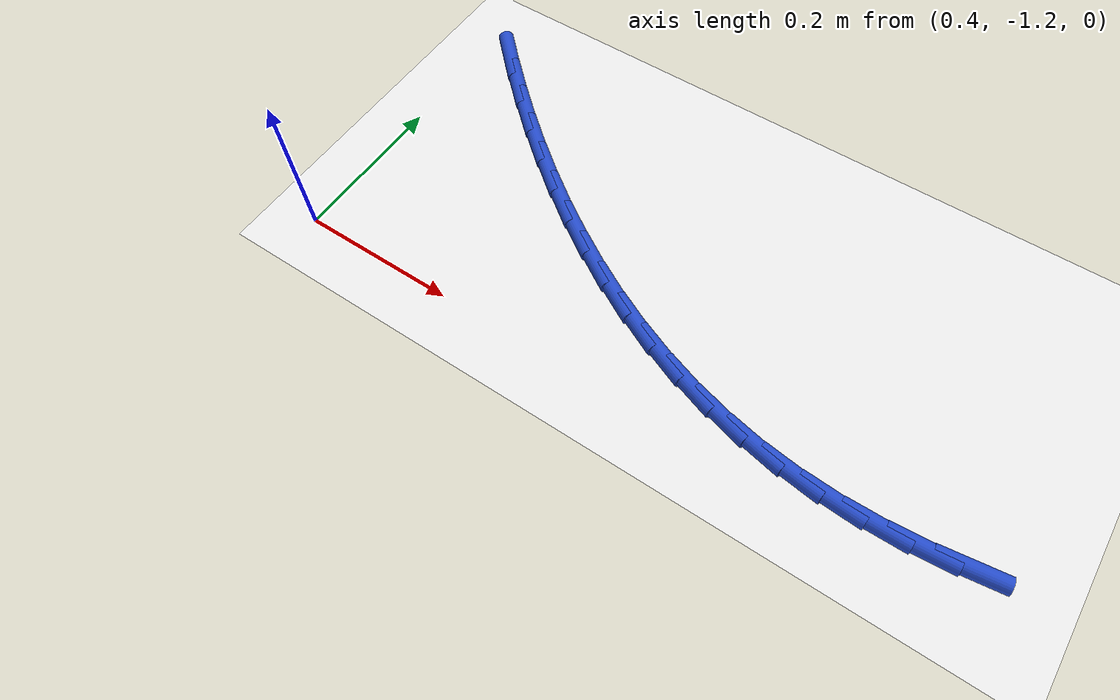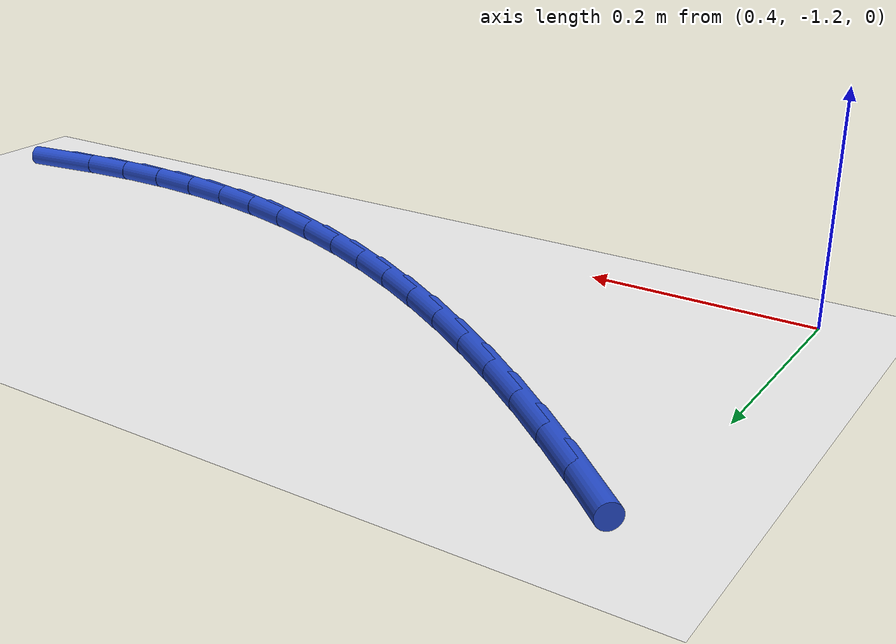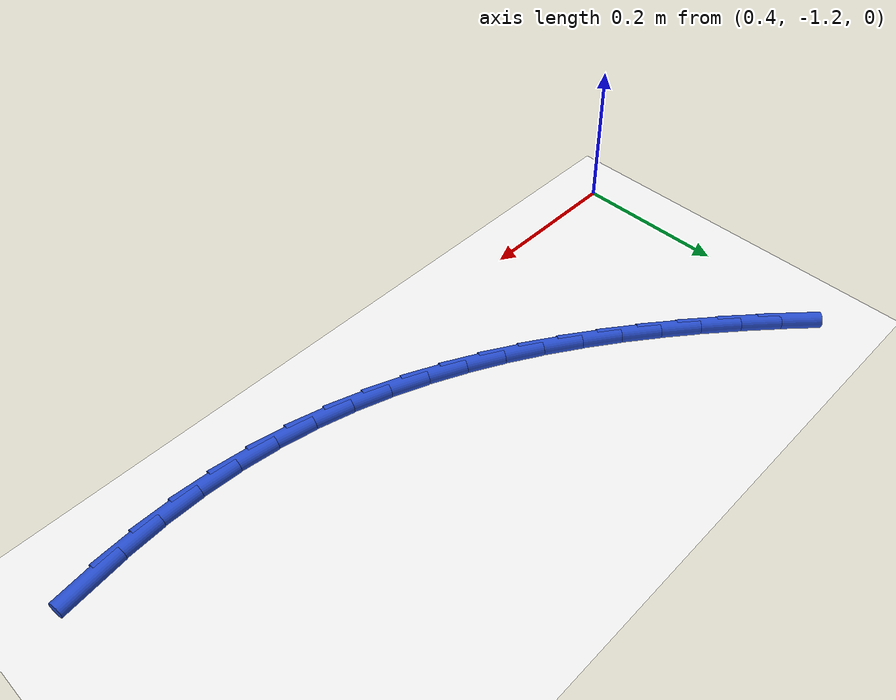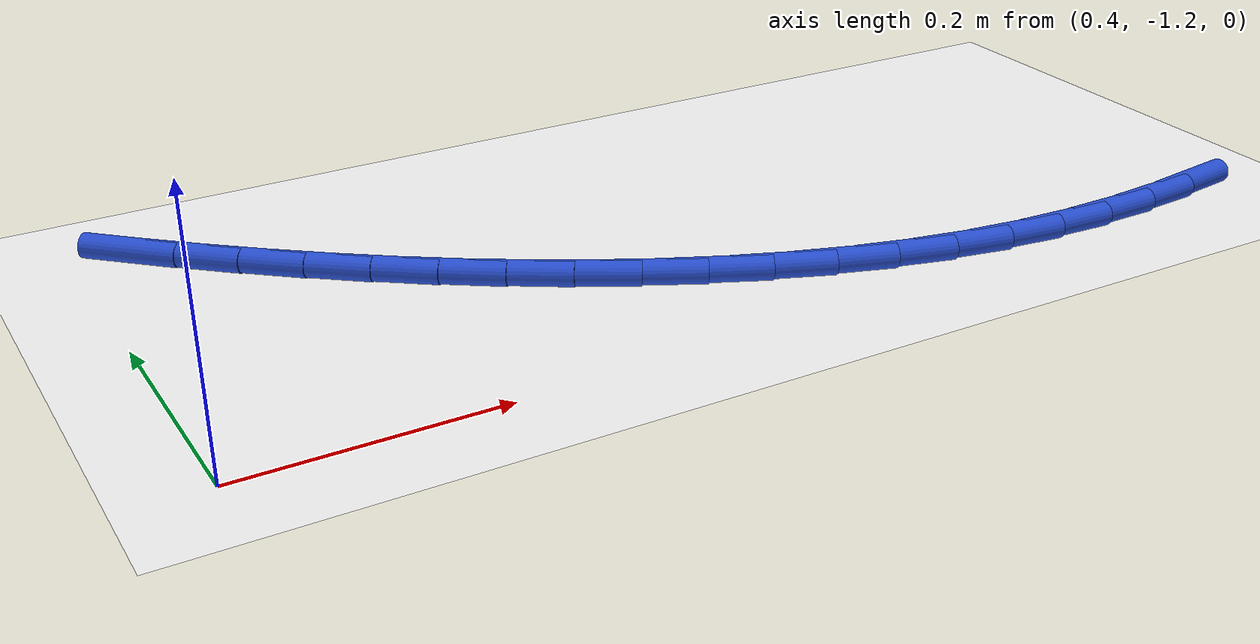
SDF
<sdf version="1.6">
 <world name="default">
  <model name="ground_plane">
   <static>1</static>
   <link name="link">
    <collision name="collision">
     <geometry><plane><normal>0 0 1</normal><size>100 100</size></plane></geometry>
     <surface><friction><ode><mu>100</mu><mu2>50</mu2></ode></friction></surface>
    </collision>
    <visual name="visual">
     <cast_shadows>0</cast_shadows>
     <geometry><plane><normal>0 0 1</normal><size>100 100</size></plane></geometry>
     <material>
      <script><uri>file://media/materials/scripts/gazebo.material</uri><name>Gazebo/WhiteGlow</name></script>
     </material>
    </visual>
   </link>
  </model>
  <model name="line">
   <link name="link_112">
    <pose>1.2397906637331175 -1.1677207955934303 0.01 0 1.57 0.13503580819292701</pose>
    <collision name="collision">
     <geometry><cylinder><radius>0.01</radius><length>0.08</length></cylinder></geometry>
    </collision>
    <visual name="visual">
     <material>
      <script><name>Gazebo/Blue</name><uri>file://media/materials/scripts/gazebo.material</uri></script>
     </material>
     <geometry><cylinder><radius>0.01</radius><length>0.08</length></cylinder></geometry>
    </visual>
   </link>
   <link name="link_113">
    <pose>1.1904670774851935 -1.1744220271072865 0.01 0 1.57 0.07286848111364515</pose>
    <collision name="collision">
     <geometry><cylinder><radius>0.01</radius><length>0.08</length></cylinder></geometry>
    </collision>
    <visual name="visual">
     <material>
      <script><name>Gazebo/Blue</name><uri>file://media/materials/scripts/gazebo.material</uri></script>
     </material>
     <geometry><cylinder><radius>0.01</radius><length>0.08</length></cylinder></geometry>
    </visual>
   </link>
   <link name="link_114">
    <pose>1.141154000618414 -1.178021769697168 0.01 0 1.57 0.008093897111162172</pose>
    <collision name="collision">
     <geometry><cylinder><radius>0.01</radius><length>0.08</length></cylinder></geometry>
    </collision>
    <visual name="visual">
     <material>
      <script><name>Gazebo/Blue</name><uri>file://media/materials/scripts/gazebo.material</uri></script>
     </material>
     <geometry><cylinder><radius>0.01</radius><length>0.08</length></cylinder></geometry>
    </visual>
   </link>
   <link name="link_115">
    <pose>1.0920659659845935 -1.1784190918752682 0.01 0 1.57 -0.05966438807939092</pose>
    <collision name="collision">
     <geometry><cylinder><radius>0.01</radius><length>0.08</length></cylinder></geometry>
    </collision>
    <visual name="visual">
     <material>
      <script><name>Gazebo/Blue</name><uri>file://media/materials/scripts/gazebo.material</uri></script>
     </material>
     <geometry><cylinder><radius>0.01</radius><length>0.08</length></cylinder></geometry>
    </visual>
   </link>
   <link name="link_116">
    <pose>1.0434175064355493 -1.1755130621537802 0.01 0 1.57 -0.13045633142943872</pose>
    <collision name="collision">
     <geometry><cylinder><radius>0.01</radius><length>0.08</length></cylinder></geometry>
    </collision>
    <visual name="visual">
     <material>
      <script><name>Gazebo/Blue</name><uri>file://media/materials/scripts/gazebo.material</uri></script>
     </material>
     <geometry><cylinder><radius>0.01</radius><length>0.08</length></cylinder></geometry>
    </visual>
   </link>
   <link name="link_117">
    <pose>0.9954143635443323 -1.1692149789112434 0.01 0 1.57 -0.20073690564707855</pose>
    <collision name="collision">
     <geometry><cylinder><radius>0.01</radius><length>0.08</length></cylinder></geometry>
    </collision>
    <visual name="visual">
     <material>
      <script><name>Gazebo/Blue</name><uri>file://media/materials/scripts/gazebo.material</uri></script>
     </material>
     <geometry><cylinder><radius>0.01</radius><length>0.08</length></cylinder></geometry>
    </visual>
   </link>
   <link name="link_118">
    <pose>0.9481466033380127 -1.1595970609684387 0.01 0 1.57 -0.2675265209608011</pose>
    <collision name="collision">
     <geometry><cylinder><radius>0.01</radius><length>0.08</length></cylinder></geometry>
    </collision>
    <visual name="visual">
     <material>
      <script><name>Gazebo/Blue</name><uri>file://media/materials/scripts/gazebo.material</uri></script>
     </material>
     <geometry><cylinder><radius>0.01</radius><length>0.08</length></cylinder></geometry>
    </visual>
   </link>
   <link name="link_119">
    <pose>0.901622720815089 -1.1468450035588262 0.01 0 1.57 -0.33038434872424144</pose>
    <collision name="collision">
     <geometry><cylinder><radius>0.01</radius><length>0.08</length></cylinder></geometry>
    </collision>
    <visual name="visual">
     <material>
      <script><name>Gazebo/Blue</name><uri>file://media/materials/scripts/gazebo.material</uri></script>
     </material>
     <geometry><cylinder><radius>0.01</radius><length>0.08</length></cylinder></geometry>
    </visual>
   </link>
   <link name="link_120">
    <pose>0.8558495025798216 -1.131146878524969 0.01 0 1.57 -0.3890906928833663</pose>
    <collision name="collision">
     <geometry><cylinder><radius>0.01</radius><length>0.08</length></cylinder></geometry>
    </collision>
    <visual name="visual">
     <material>
      <script><name>Gazebo/Blue</name><uri>file://media/materials/scripts/gazebo.material</uri></script>
     </material>
     <geometry><cylinder><radius>0.01</radius><length>0.08</length></cylinder></geometry>
    </visual>
   </link>
   <link name="link_121">
    <pose>0.8108337352364742 -1.1126907577094314 0.01 0 1.57 -0.4435694317421777</pose>
    <collision name="collision">
     <geometry><cylinder><radius>0.01</radius><length>0.08</length></cylinder></geometry>
    </collision>
    <visual name="visual">
     <material>
      <script><name>Gazebo/Blue</name><uri>file://media/materials/scripts/gazebo.material</uri></script>
     </material>
     <geometry><cylinder><radius>0.01</radius><length>0.08</length></cylinder></geometry>
    </visual>
   </link>
   <link name="link_122">
    <pose>0.7665822053893103 -1.0916647129547783 0.01 0 1.57 -0.4938578673333554</pose>
    <collision name="collision">
     <geometry><cylinder><radius>0.01</radius><length>0.08</length></cylinder></geometry>
    </collision>
    <visual name="visual">
     <material>
      <script><name>Gazebo/Blue</name><uri>file://media/materials/scripts/gazebo.material</uri></script>
     </material>
     <geometry><cylinder><radius>0.01</radius><length>0.08</length></cylinder></geometry>
    </visual>
   </link>
   <link name="link_123">
    <pose>0.7231016996425909 -1.0682568161035724 0.01 0 1.57 -0.5400760857313783</pose>
    <collision name="collision">
     <geometry><cylinder><radius>0.01</radius><length>0.08</length></cylinder></geometry>
    </collision>
    <visual name="visual">
     <material>
      <script><name>Gazebo/Blue</name><uri>file://media/materials/scripts/gazebo.material</uri></script>
     </material>
     <geometry><cylinder><radius>0.01</radius><length>0.08</length></cylinder></geometry>
    </visual>
   </link>
   <link name="link_124">
    <pose>0.6803990046005786 -1.0426551389983771 0.01 0 1.57 -0.5823992795328833</pose>
    <collision name="collision">
     <geometry><cylinder><radius>0.01</radius><length>0.08</length></cylinder></geometry>
    </collision>
    <visual name="visual">
     <material>
      <script><name>Gazebo/Blue</name><uri>file://media/materials/scripts/gazebo.material</uri></script>
     </material>
     <geometry><cylinder><radius>0.01</radius><length>0.08</length></cylinder></geometry>
    </visual>
   </link>
   <link name="link_125">
    <pose>0.6384809068675373 -1.015047753481758 0.01 0 1.57 -0.6210347179878237</pose>
    <collision name="collision">
     <geometry><cylinder><radius>0.01</radius><length>0.08</length></cylinder></geometry>
    </collision>
    <visual name="visual">
     <material>
      <script><name>Gazebo/Blue</name><uri>file://media/materials/scripts/gazebo.material</uri></script>
     </material>
     <geometry><cylinder><radius>0.01</radius><length>0.08</length></cylinder></geometry>
    </visual>
   </link>
   <link name="link_126">
    <pose>0.5973541930477281 -0.9856227313962775 0.01 0 1.57 -0.6562037562011503</pose>
    <collision name="collision">
     <geometry><cylinder><radius>0.01</radius><length>0.08</length></cylinder></geometry>
    </collision>
    <visual name="visual">
     <material>
      <script><name>Gazebo/Blue</name><uri>file://media/materials/scripts/gazebo.material</uri></script>
     </material>
     <geometry><cylinder><radius>0.01</radius><length>0.08</length></cylinder></geometry>
    </visual>
   </link>
   <link name="link_127">
    <pose>0.5570256497454146 -0.9545681445845005 0.01 0 1.57 -0.6881284929013751</pose>
    <collision name="collision">
     <geometry><cylinder><radius>0.01</radius><length>0.08</length></cylinder></geometry>
    </collision>
    <visual name="visual">
     <material>
      <script><name>Gazebo/Blue</name><uri>file://media/materials/scripts/gazebo.material</uri></script>
     </material>
     <geometry><cylinder><radius>0.01</radius><length>0.08</length></cylinder></geometry>
    </visual>
   </link>
   <link name="link_128">
    <pose>0.5175020635648584 -0.9220720648889897 0.01 0 1.57 -0.7170223138628371</pose>
    <collision name="collision">
     <geometry><cylinder><radius>0.01</radius><length>0.08</length></cylinder></geometry>
    </collision>
    <visual name="visual">
     <material>
      <script><name>Gazebo/Blue</name><uri>file://media/materials/scripts/gazebo.material</uri></script>
     </material>
     <geometry><cylinder><radius>0.01</radius><length>0.08</length></cylinder></geometry>
    </visual>
   </link>
   <link name="link_129">
    <pose>0.4787902211103223 -0.8883225641523096 0.01 0 1.57 -0.7430834559665142</pose>
    <collision name="collision">
     <geometry><cylinder><radius>0.01</radius><length>0.08</length></cylinder></geometry>
    </collision>
    <visual name="visual">
     <material>
      <script><name>Gazebo/Blue</name><uri>file://media/materials/scripts/gazebo.material</uri></script>
     </material>
     <geometry><cylinder><radius>0.01</radius><length>0.08</length></cylinder></geometry>
    </visual>
   </link>
   <link name="link_130">
    <pose>0.44089690898606987 -0.8535077142170252 0.01 0 1.57 -0.7664907743654915</pose>
    <collision name="collision">
     <geometry><cylinder><radius>0.01</radius><length>0.08</length></cylinder></geometry>
    </collision>
    <visual name="visual">
     <material>
      <script><name>Gazebo/Blue</name><uri>file://media/materials/scripts/gazebo.material</uri></script>
     </material>
     <geometry><cylinder><radius>0.01</radius><length>0.08</length></cylinder></geometry>
    </visual>
   </link>
  </model>
 </world>
</sdf>
